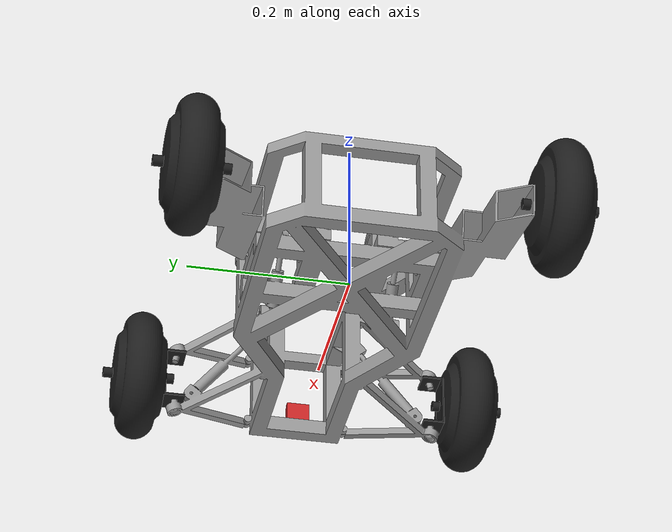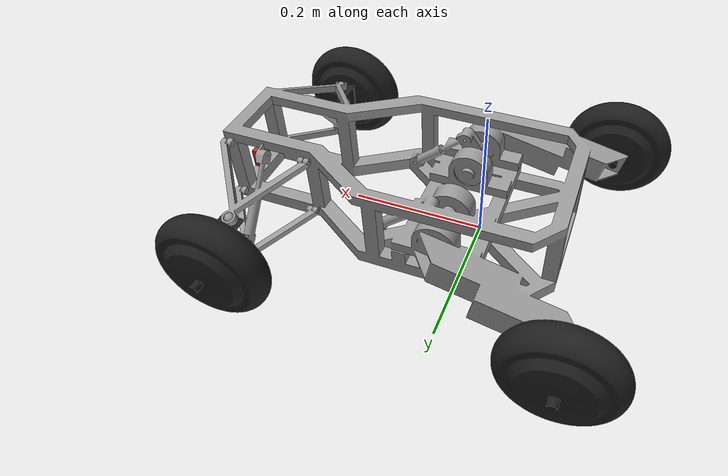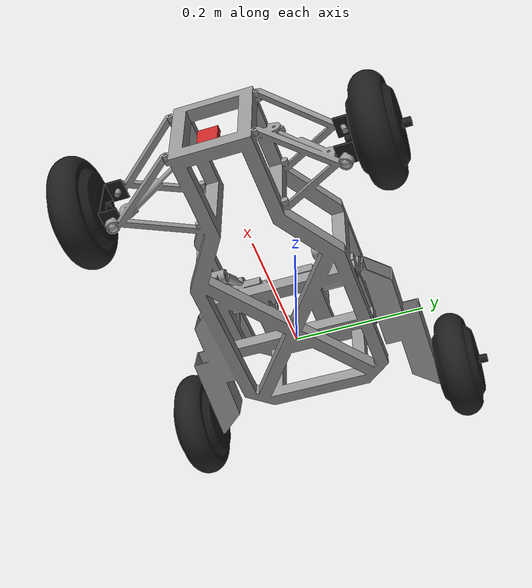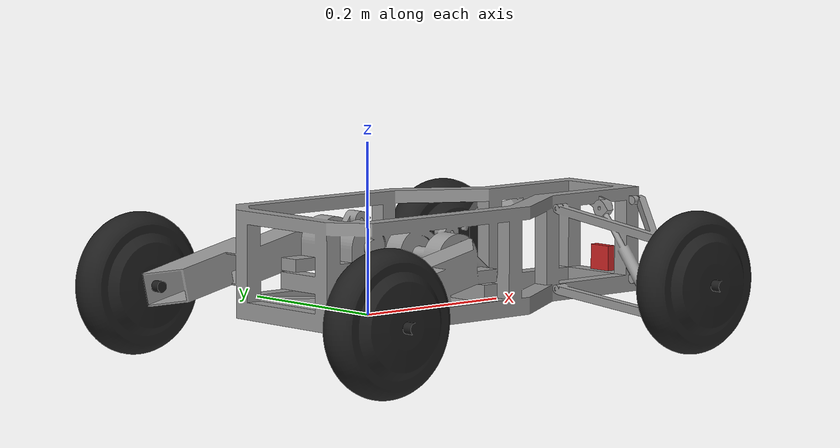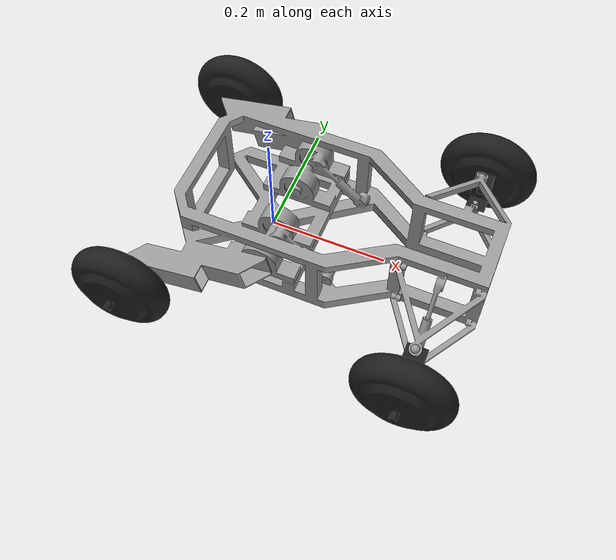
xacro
<?xml version="1.0" ?>
<robot name="potrol"  xmlns:xacro="http://www.ros.org/wiki/xacro">

    <xacro:include filename="base_wheels.xacro"/>
    <xacro:include filename="ros2_control.xacro"/>
    <xacro:include filename="camera.xacro"/>

</robot>

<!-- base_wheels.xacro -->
<robot name="potrol"  xmlns:xacro="http://www.ros.org/wiki/xacro">

    <!-- BASE LINK -->
    <link name="base_link">
        <inertial>
            <origin xyz="0.0 0.0 0.0" rpy="0.0 0.0 0.0"/>
            <mass value="30.0"/>
            <inertia  ixx="0.4036570743693346" ixy="0" ixz="0" iyy="0.8343288512691416" iyz="0" izz="1.1286581468243995" />

        </inertial>
        <visual>
            <origin rpy="0 0 0" xyz="0 0 0"/>
            <geometry>
                <mesh filename="package://potrol_description_cmake/meshes/potrol_frame_v2.dae" scale="1 1 1"/>

            </geometry>
            <material name="gray"/>

        </visual>
        <collision>
            <origin rpy="0 0 0" xyz="0 0 0"/>
            <geometry>

                <mesh filename="package://potrol_description_cmake/meshes/potrol_frame_v2.dae" scale="1 1 1"/>

            </geometry>

        </collision>
    </link>

    <!-- BASE LINK END -->

    <!-- WHEEL_FRAME -->

    <xacro:macro name="connnect_frame" params="name x y z p yy">
        <link name="wheel_connnect_frame_${name}_link">
           <inertial>
                <origin xyz="0.0 0.0 0.0" rpy="0.0 0.0 0.0"/>
                <mass value="1"/>
                <inertia  ixx="0.014209999964535239" ixy="0" ixz="0" iyy="0.014972055069813195" iyz="0" izz="0.004682054825732177" />

           </inertial>
            <visual>
                <geometry>
                    <mesh filename="package://potrol_description_cmake/meshes/connnect_frame.dae" scale="1 1 1"/>

                </geometry>
                <material name="Black"/>

            </visual>

            <collision>
                <geometry>
                    <mesh filename="package://potrol_description_cmake/meshes/connnect_frame.dae" scale="1 1 1"/>

                </geometry>
            </collision>
        </link>

        <joint name="wheel_connnect_frame_${name}_joint" type="continuous">
            <origin rpy="0 ${p} ${yy}" xyz="${x} ${y} ${z}"/>
            <parent  link="base_link" />
            <child link="wheel_connnect_frame_${name}_link"/>
            <axis xyz="0.0 0.0 1.0"/>
        </joint>

        <gazebo reference="wheel_${name}_link">
          <material>Gazebo/Gray</material>
        </gazebo>
    </xacro:macro>

    <xacro:connnect_frame name="forward_left"  x="0.307287" y="0.170165" z="0.032513" p="0" yy="3.14" />
    <xacro:connnect_frame name="forward_right"  x="0.307287" y="-0.170165" z="0.032513" p="0" yy="0" />

    <!-- WHEEL_FRAME_END -->

    <!-- WHEEL -->
    <!-- forward -->
    <xacro:macro name="big_wheel_forward" params="name x y z p yy">
        <link name="wheel_${name}_link">
           <inertial>
                <origin xyz="0.0 0.0 0.0" rpy="0.0 0.0 0.0"/>
                <mass value="4.1"/>
                <inertia  ixx="0.0912444080325564" ixy="0" ixz="0" iyy="0.1391509116158557" iyz="0" izz="0.0911514987052553" />

           </inertial>
            <visual>
                <geometry>
                    <mesh filename="package://potrol_description_cmake/meshes/wheel.dae" scale="1 1 1"/>

                </geometry>
                <material name="Black"/>

            </visual>

            <collision>
                <geometry>
                    <mesh filename="package://potrol_description_cmake/meshes/wheel.dae" scale="1 1 1"/>

                </geometry>
            </collision>
        </link>

        <joint name="wheel_${name}_joint" type="continuous">
            <origin rpy="0 ${p} ${yy}" xyz="${x} ${y} ${z}"/>
            <parent  link="wheel_connnect_frame_${name}_link" />
            <child link="wheel_${name}_link"/>
            <axis xyz="0.0 1.0 0.0"/>
        </joint>

        <gazebo reference="wheel_${name}_link">
          <material>Gazebo/Gray</material>
          <mu>1.0</mu>
          <mu2>1.0</mu2>
        </gazebo>
    </xacro:macro>

    <xacro:big_wheel_forward name="forward_left"  x="0.0" y="-0.05" z="0.0" p="0" yy="3.14" />
    <xacro:big_wheel_forward name="forward_right"  x="0.0" y="-0.05" z="0.0" p="0" yy="0.0"/>

    <!-- backward -->
    <xacro:macro name="big_wheel_backward" params="name x y z p">
        <link name="wheel_${name}_link">
           <inertial>
                <origin xyz="0.0 0.0 0.0" rpy="0.0 0.0 0.0"/>
                <mass value="4.1"/>
                <inertia  ixx="0.0912444080325564" ixy="0" ixz="0" iyy="0.1391509116158557" iyz="0" izz="0.0911514987052553" />
           </inertial>
            <visual>
                <geometry>
                    <mesh filename="package://potrol_description_cmake/meshes/wheel.dae" scale="1 1 1"/>
                </geometry>
                <material name="Black"/>

            </visual>

            <collision>
                <geometry>
                    <mesh filename="package://potrol_description_cmake/meshes/wheel.dae" scale="1 1 1"/>

                </geometry>
            </collision>
        </link>

        <joint name="wheel_${name}_joint" type="continuous">
            <origin rpy="0 ${p} 0" xyz="${x} ${y} ${z}"/>
            <parent  link="base_link" />
            <child link="wheel_${name}_link"/>
            <axis xyz="0.0 1.0 0.0"/>
        </joint>

        <gazebo reference="wheel_${name}_link">
          <material>Gazebo/Gray</material>
          <mu>1.0</mu>
          <mu2>1.0</mu2>
        </gazebo>
    </xacro:macro>

    <xacro:big_wheel_backward name="backward_left"  x="-0.165050" y="0.220515" z="0.029786" p="0" />
    <xacro:big_wheel_backward name="backward_right"  x="-0.165050" y="-0.220515" z="0.029786" p="0" />

    <!-- WHEEL_END-->

    <!-- CAMERA -->
    <joint name="camera_joint" type="fixed">
        <parent link="base_link"/>
        <child link="camera_link"/>
        <origin xyz="0.37 -0.004 0.035" rpy="0 0 0"/>
    </joint>

    <!-- CAMERA END -->

</robot>

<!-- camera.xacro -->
<robot name="potrol"  xmlns:xacro="http://www.ros.org/wiki/xacro">

    <link name="camera_link">
        <visual>
            <geometry>
                <box size="0.010 0.03 0.03"/>
            </geometry>
            <material name="red"/>
        </visual>
    </link>

    <joint name="camera_optical_joint" type="fixed">
        <parent link="camera_link"/>
        <child link="camera_link_optical"/>
        <origin xyz="0 0 0" rpy="${-pi/2} 0 ${-pi/2}"/>
    </joint>

    <link name="camera_link_optical"></link>

    <gazebo reference="camera_link">
        <material>Gazebo/Red</material>

        <sensor name="camera" type="depth">
            <pose> 0 0 0 0 0 0 </pose>
            <visualize>true</visualize>
            <update_rate>10</update_rate>
            <camera>
                <horizontal_fov>1.089</horizontal_fov>
                <image>
                    <format>B8G8R8</format>
                    <width>640</width>
                    <height>480</height>
                </image>
                <clip>
                    <near>0.05</near>
                    <far>8.0</far>
                </clip>
            </camera>
            <plugin name="camera_controller" filename="libgazebo_ros_camera.so">
                <frame_name>camera_link_optical</frame_name>
                <min_depth>0.1</min_depth>
                <max_depth>100.0</max_depth>
            </plugin>
        </sensor>
    </gazebo>

    <!-- camera -->

  <!-- Camera -->

</robot>
